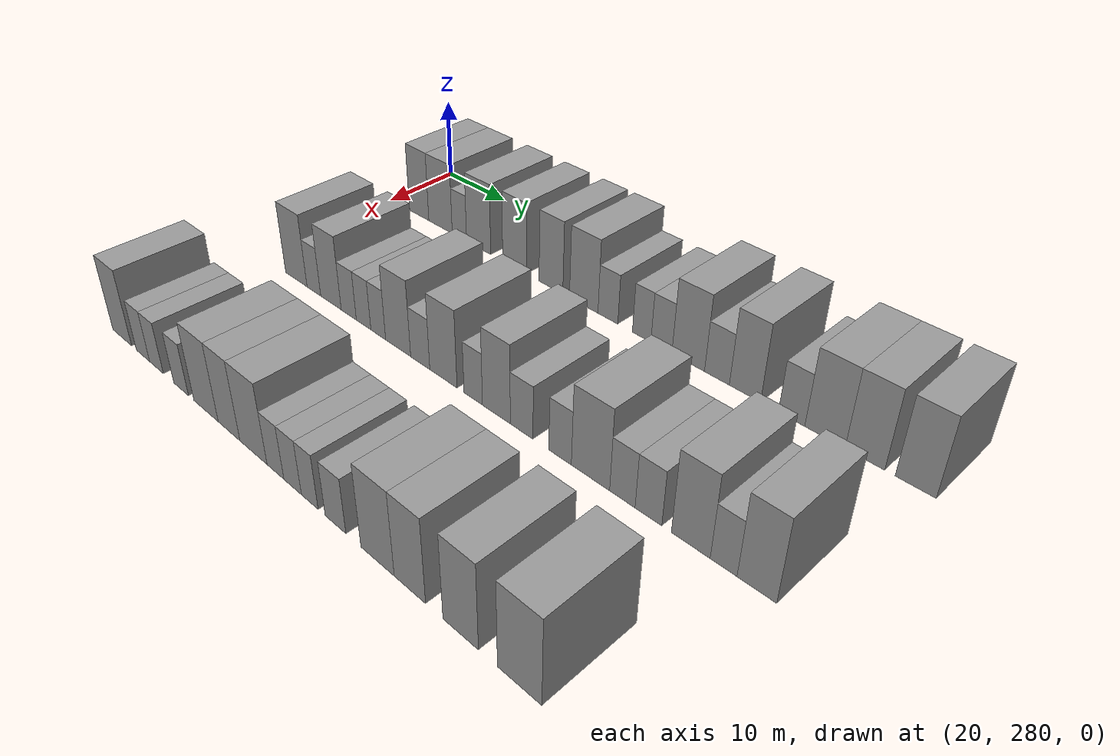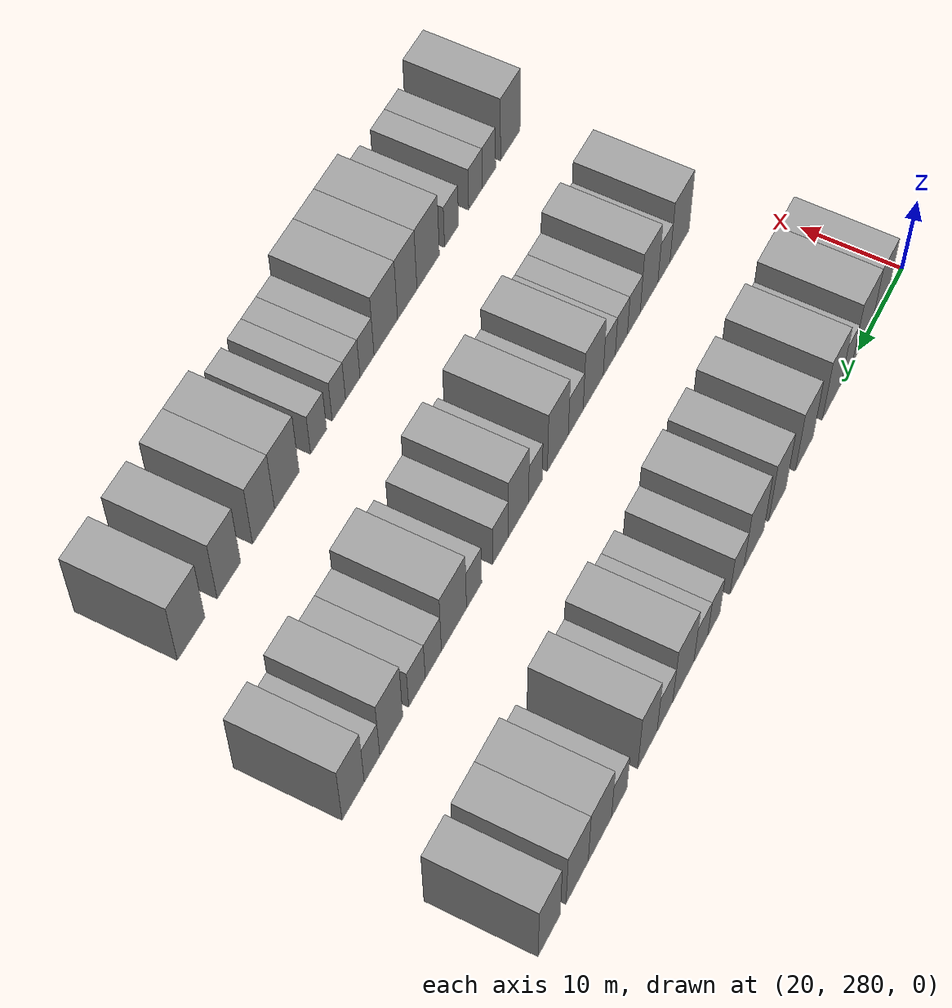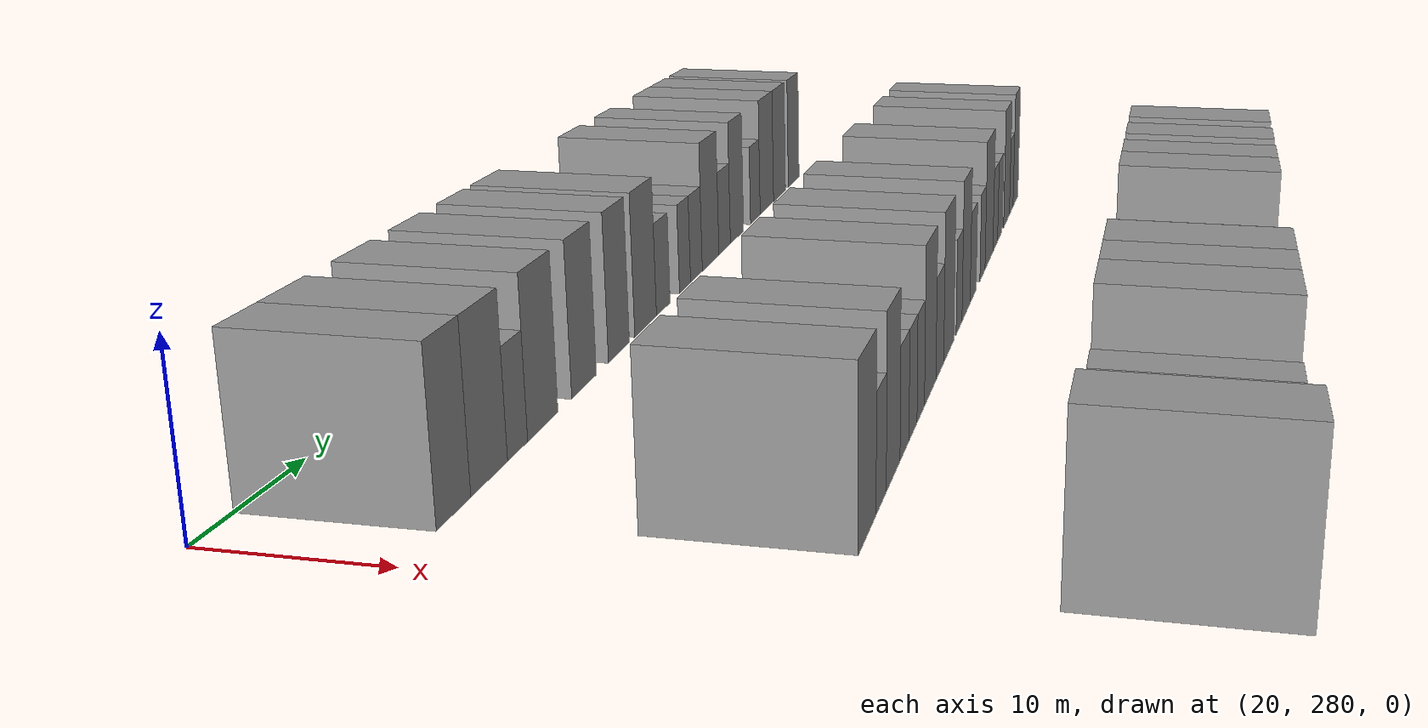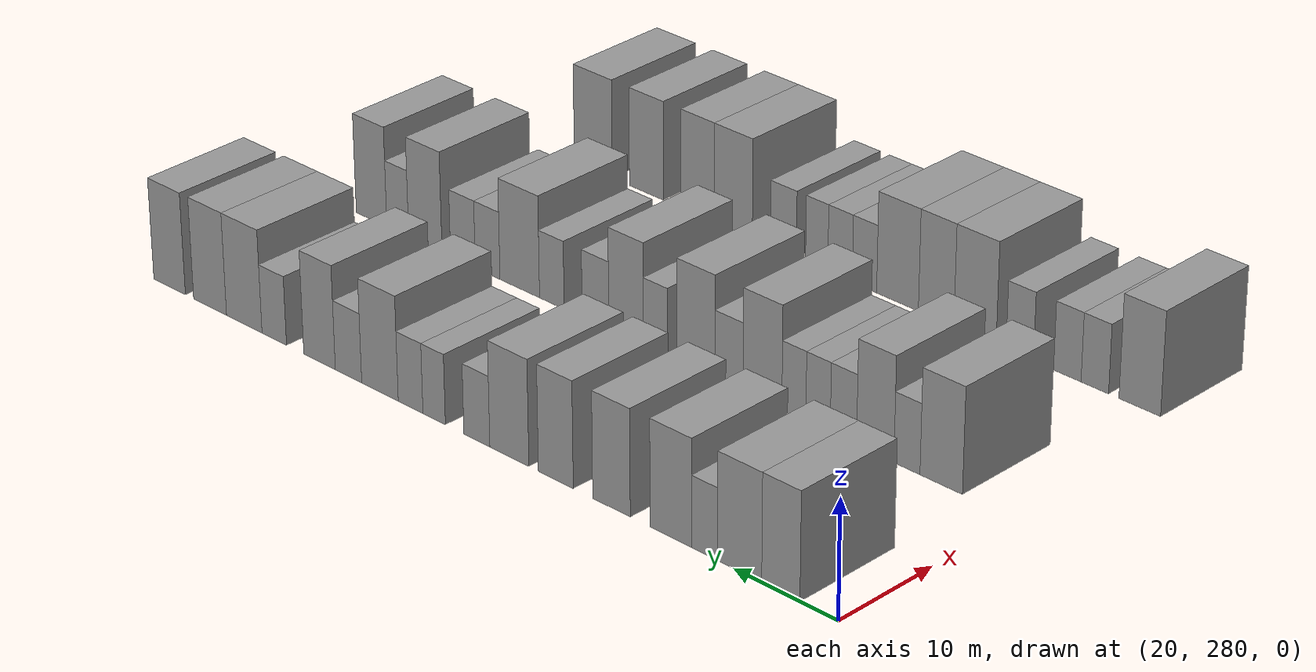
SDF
<sdf version="1.6">
 <world name="default">
  <model name="building_154">
   <static>1</static>
   <pose>25.0000 285.4365 0 0.000000 0.000000 0.000000</pose>
   <link name="link">
    <pose>0 0 4.50 0 0 0</pose>
    <collision name="collision"><geometry><box><size>10.0000 3.6481 9.0000</size></box></geometry></collision>
    <visual name="visual">
     <cast_shadows>0</cast_shadows>
     <geometry><box><size>10.0000 3.6481 9.0000</size></box></geometry>
     <material>
      <script>
       <uri>model://grey_wall/materials/scripts</uri>
       <uri>model://grey_wall/materials/textures</uri>
       <name>vrc/grey_wall</name>
      </script>
     </material>
    </visual>
   </link>
  </model>
  <model name="building_155">
   <static>1</static>
   <pose>25.0000 289.3986 0 0.000000 0.000000 0.000000</pose>
   <link name="link">
    <pose>0 0 4.50 0 0 0</pose>
    <collision name="collision"><geometry><box><size>10.0000 4.2760 9.0000</size></box></geometry></collision>
    <visual name="visual">
     <cast_shadows>0</cast_shadows>
     <geometry><box><size>10.0000 4.2760 9.0000</size></box></geometry>
     <material>
      <script>
       <uri>model://grey_wall/materials/scripts</uri>
       <uri>model://grey_wall/materials/textures</uri>
       <name>vrc/grey_wall</name>
      </script>
     </material>
    </visual>
   </link>
  </model>
  <model name="building_156">
   <static>1</static>
   <pose>25.0000 292.8083 0 0.000000 0.000000 0.000000</pose>
   <link name="link">
    <pose>0 0 3.00 0 0 0</pose>
    <collision name="collision"><geometry><box><size>10.0000 2.5434 6.0000</size></box></geometry></collision>
    <visual name="visual">
     <cast_shadows>0</cast_shadows>
     <geometry><box><size>10.0000 2.5434 6.0000</size></box></geometry>
     <material>
      <script>
       <uri>model://grey_wall/materials/scripts</uri>
       <uri>model://grey_wall/materials/textures</uri>
       <name>vrc/grey_wall</name>
      </script>
     </material>
    </visual>
   </link>
  </model>
  <model name="building_157">
   <static>1</static>
   <pose>25.0000 296.1416 0 0.000000 0.000000 0.000000</pose>
   <link name="link">
    <pose>0 0 4.50 0 0 0</pose>
    <collision name="collision"><geometry><box><size>10.0000 4.1233 9.0000</size></box></geometry></collision>
    <visual name="visual">
     <cast_shadows>0</cast_shadows>
     <geometry><box><size>10.0000 4.1233 9.0000</size></box></geometry>
     <material>
      <script>
       <uri>model://grey_wall/materials/scripts</uri>
       <uri>model://grey_wall/materials/textures</uri>
       <name>vrc/grey_wall</name>
      </script>
     </material>
    </visual>
   </link>
  </model>
  <model name="building_158">
   <static>1</static>
   <pose>25.0000 302.1129 0 0.000000 0.000000 0.000000</pose>
   <link name="link">
    <pose>0 0 4.50 0 0 0</pose>
    <collision name="collision"><geometry><box><size>10.0000 3.8192 9.0000</size></box></geometry></collision>
    <visual name="visual">
     <cast_shadows>0</cast_shadows>
     <geometry><box><size>10.0000 3.8192 9.0000</size></box></geometry>
     <material>
      <script>
       <uri>model://grey_wall/materials/scripts</uri>
       <uri>model://grey_wall/materials/textures</uri>
       <name>vrc/grey_wall</name>
      </script>
     </material>
    </visual>
   </link>
  </model>
  <model name="building_159">
   <static>1</static>
   <pose>25.0000 307.8364 0 0.000000 0.000000 0.000000</pose>
   <link name="link">
    <pose>0 0 4.50 0 0 0</pose>
    <collision name="collision"><geometry><box><size>10.0000 3.6278 9.0000</size></box></geometry></collision>
    <visual name="visual">
     <cast_shadows>0</cast_shadows>
     <geometry><box><size>10.0000 3.6278 9.0000</size></box></geometry>
     <material>
      <script>
       <uri>model://grey_wall/materials/scripts</uri>
       <uri>model://grey_wall/materials/textures</uri>
       <name>vrc/grey_wall</name>
      </script>
     </material>
    </visual>
   </link>
  </model>
  <model name="building_160">
   <static>1</static>
   <pose>25.0000 312.7195 0 0.000000 0.000000 0.000000</pose>
   <link name="link">
    <pose>0 0 4.50 0 0 0</pose>
    <collision name="collision"><geometry><box><size>10.0000 4.1385 9.0000</size></box></geometry></collision>
    <visual name="visual">
     <cast_shadows>0</cast_shadows>
     <geometry><box><size>10.0000 4.1385 9.0000</size></box></geometry>
     <material>
      <script>
       <uri>model://grey_wall/materials/scripts</uri>
       <uri>model://grey_wall/materials/textures</uri>
       <name>vrc/grey_wall</name>
      </script>
     </material>
    </visual>
   </link>
  </model>
  <model name="building_161">
   <static>1</static>
   <pose>25.0000 316.1826 0 0.000000 0.000000 0.000000</pose>
   <link name="link">
    <pose>0 0 3.00 0 0 0</pose>
    <collision name="collision"><geometry><box><size>10.0000 2.7876 6.0000</size></box></geometry></collision>
    <visual name="visual">
     <cast_shadows>0</cast_shadows>
     <geometry><box><size>10.0000 2.7876 6.0000</size></box></geometry>
     <material>
      <script>
       <uri>model://grey_wall/materials/scripts</uri>
       <uri>model://grey_wall/materials/textures</uri>
       <name>vrc/grey_wall</name>
      </script>
     </material>
    </visual>
   </link>
  </model>
  <model name="building_162">
   <static>1</static>
   <pose>25.0000 320.8050 0 0.000000 0.000000 0.000000</pose>
   <link name="link">
    <pose>0 0 3.00 0 0 0</pose>
    <collision name="collision"><geometry><box><size>10.0000 2.4573 6.0000</size></box></geometry></collision>
    <visual name="visual">
     <cast_shadows>0</cast_shadows>
     <geometry><box><size>10.0000 2.4573 6.0000</size></box></geometry>
     <material>
      <script>
       <uri>model://grey_wall/materials/scripts</uri>
       <uri>model://grey_wall/materials/textures</uri>
       <name>vrc/grey_wall</name>
      </script>
     </material>
    </visual>
   </link>
  </model>
  <model name="building_163">
   <static>1</static>
   <pose>25.0000 323.3936 0 0.000000 0.000000 0.000000</pose>
   <link name="link">
    <pose>0 0 3.00 0 0 0</pose>
    <collision name="collision"><geometry><box><size>10.0000 2.7198 6.0000</size></box></geometry></collision>
    <visual name="visual">
     <cast_shadows>0</cast_shadows>
     <geometry><box><size>10.0000 2.7198 6.0000</size></box></geometry>
     <material>
      <script>
       <uri>model://grey_wall/materials/scripts</uri>
       <uri>model://grey_wall/materials/textures</uri>
       <name>vrc/grey_wall</name>
      </script>
     </material>
    </visual>
   </link>
  </model>
  <model name="building_164">
   <static>1</static>
   <pose>25.0000 326.7946 0 0.000000 0.000000 0.000000</pose>
   <link name="link">
    <pose>0 0 4.50 0 0 0</pose>
    <collision name="collision"><geometry><box><size>10.0000 4.0823 9.0000</size></box></geometry></collision>
    <visual name="visual">
     <cast_shadows>0</cast_shadows>
     <geometry><box><size>10.0000 4.0823 9.0000</size></box></geometry>
     <material>
      <script>
       <uri>model://grey_wall/materials/scripts</uri>
       <uri>model://grey_wall/materials/textures</uri>
       <name>vrc/grey_wall</name>
      </script>
     </material>
    </visual>
   </link>
  </model>
  <model name="building_165">
   <static>1</static>
   <pose>25.0000 330.3265 0 0.000000 0.000000 0.000000</pose>
   <link name="link">
    <pose>0 0 3.00 0 0 0</pose>
    <collision name="collision"><geometry><box><size>10.0000 2.9815 6.0000</size></box></geometry></collision>
    <visual name="visual">
     <cast_shadows>0</cast_shadows>
     <geometry><box><size>10.0000 2.9815 6.0000</size></box></geometry>
     <material>
      <script>
       <uri>model://grey_wall/materials/scripts</uri>
       <uri>model://grey_wall/materials/textures</uri>
       <name>vrc/grey_wall</name>
      </script>
     </material>
    </visual>
   </link>
  </model>
  <model name="building_166">
   <static>1</static>
   <pose>25.0000 333.6222 0 0.000000 0.000000 0.000000</pose>
   <link name="link">
    <pose>0 0 4.50 0 0 0</pose>
    <collision name="collision"><geometry><box><size>10.0000 3.6100 9.0000</size></box></geometry></collision>
    <visual name="visual">
     <cast_shadows>0</cast_shadows>
     <geometry><box><size>10.0000 3.6100 9.0000</size></box></geometry>
     <material>
      <script>
       <uri>model://grey_wall/materials/scripts</uri>
       <uri>model://grey_wall/materials/textures</uri>
       <name>vrc/grey_wall</name>
      </script>
     </material>
    </visual>
   </link>
  </model>
  <model name="building_167">
   <static>1</static>
   <pose>25.0000 338.8561 0 0.000000 0.000000 0.000000</pose>
   <link name="link">
    <pose>0 0 3.00 0 0 0</pose>
    <collision name="collision"><geometry><box><size>10.0000 2.8579 6.0000</size></box></geometry></collision>
    <visual name="visual">
     <cast_shadows>0</cast_shadows>
     <geometry><box><size>10.0000 2.8579 6.0000</size></box></geometry>
     <material>
      <script>
       <uri>model://grey_wall/materials/scripts</uri>
       <uri>model://grey_wall/materials/textures</uri>
       <name>vrc/grey_wall</name>
      </script>
     </material>
    </visual>
   </link>
  </model>
  <model name="building_168">
   <static>1</static>
   <pose>25.0000 342.3810 0 0.000000 0.000000 0.000000</pose>
   <link name="link">
    <pose>0 0 4.50 0 0 0</pose>
    <collision name="collision"><geometry><box><size>10.0000 4.1919 9.0000</size></box></geometry></collision>
    <visual name="visual">
     <cast_shadows>0</cast_shadows>
     <geometry><box><size>10.0000 4.1919 9.0000</size></box></geometry>
     <material>
      <script>
       <uri>model://grey_wall/materials/scripts</uri>
       <uri>model://grey_wall/materials/textures</uri>
       <name>vrc/grey_wall</name>
      </script>
     </material>
    </visual>
   </link>
  </model>
  <model name="building_169">
   <static>1</static>
   <pose>25.0000 346.4459 0 0.000000 0.000000 0.000000</pose>
   <link name="link">
    <pose>0 0 4.50 0 0 0</pose>
    <collision name="collision"><geometry><box><size>10.0000 3.9378 9.0000</size></box></geometry></collision>
    <visual name="visual">
     <cast_shadows>0</cast_shadows>
     <geometry><box><size>10.0000 3.9378 9.0000</size></box></geometry>
     <material>
      <script>
       <uri>model://grey_wall/materials/scripts</uri>
       <uri>model://grey_wall/materials/textures</uri>
       <name>vrc/grey_wall</name>
      </script>
     </material>
    </visual>
   </link>
  </model>
  <model name="building_170">
   <static>1</static>
   <pose>25.0000 351.3313 0 0.000000 0.000000 0.000000</pose>
   <link name="link">
    <pose>0 0 4.50 0 0 0</pose>
    <collision name="collision"><geometry><box><size>10.0000 3.8329 9.0000</size></box></geometry></collision>
    <visual name="visual">
     <cast_shadows>0</cast_shadows>
     <geometry><box><size>10.0000 3.8329 9.0000</size></box></geometry>
     <material>
      <script>
       <uri>model://grey_wall/materials/scripts</uri>
       <uri>model://grey_wall/materials/textures</uri>
       <name>vrc/grey_wall</name>
      </script>
     </material>
    </visual>
   </link>
  </model>
  <model name="building_324">
   <static>1</static>
   <pose>44.0000 287.0128 0 0.000000 0.000000 0.000000</pose>
   <link name="link">
    <pose>0 0 4.50 0 0 0</pose>
    <collision name="collision"><geometry><box><size>10.0000 4.1016 9.0000</size></box></geometry></collision>
    <visual name="visual">
     <cast_shadows>0</cast_shadows>
     <geometry><box><size>10.0000 4.1016 9.0000</size></box></geometry>
     <material>
      <script>
       <uri>model://grey_wall/materials/scripts</uri>
       <uri>model://grey_wall/materials/textures</uri>
       <name>vrc/grey_wall</name>
      </script>
     </material>
    </visual>
   </link>
  </model>
  <model name="building_325">
   <static>1</static>
   <pose>44.0000 290.3367 0 0.000000 0.000000 0.000000</pose>
   <link name="link">
    <pose>0 0 3.00 0 0 0</pose>
    <collision name="collision"><geometry><box><size>10.0000 2.5463 6.0000</size></box></geometry></collision>
    <visual name="visual">
     <cast_shadows>0</cast_shadows>
     <geometry><box><size>10.0000 2.5463 6.0000</size></box></geometry>
     <material>
      <script>
       <uri>model://grey_wall/materials/scripts</uri>
       <uri>model://grey_wall/materials/textures</uri>
       <name>vrc/grey_wall</name>
      </script>
     </material>
    </visual>
   </link>
  </model>
  <model name="building_326">
   <static>1</static>
   <pose>44.0000 293.4588 0 0.000000 0.000000 0.000000</pose>
   <link name="link">
    <pose>0 0 4.50 0 0 0</pose>
    <collision name="collision"><geometry><box><size>10.0000 3.6979 9.0000</size></box></geometry></collision>
    <visual name="visual">
     <cast_shadows>0</cast_shadows>
     <geometry><box><size>10.0000 3.6979 9.0000</size></box></geometry>
     <material>
      <script>
       <uri>model://grey_wall/materials/scripts</uri>
       <uri>model://grey_wall/materials/textures</uri>
       <name>vrc/grey_wall</name>
      </script>
     </material>
    </visual>
   </link>
  </model>
  <model name="building_327">
   <static>1</static>
   <pose>44.0000 296.6218 0 0.000000 0.000000 0.000000</pose>
   <link name="link">
    <pose>0 0 3.00 0 0 0</pose>
    <collision name="collision"><geometry><box><size>10.0000 2.6282 6.0000</size></box></geometry></collision>
    <visual name="visual">
     <cast_shadows>0</cast_shadows>
     <geometry><box><size>10.0000 2.6282 6.0000</size></box></geometry>
     <material>
      <script>
       <uri>model://grey_wall/materials/scripts</uri>
       <uri>model://grey_wall/materials/textures</uri>
       <name>vrc/grey_wall</name>
      </script>
     </material>
    </visual>
   </link>
  </model>
  <model name="building_328">
   <static>1</static>
   <pose>44.0000 299.1699 0 0.000000 0.000000 0.000000</pose>
   <link name="link">
    <pose>0 0 3.00 0 0 0</pose>
    <collision name="collision"><geometry><box><size>10.0000 2.4679 6.0000</size></box></geometry></collision>
    <visual name="visual">
     <cast_shadows>0</cast_shadows>
     <geometry><box><size>10.0000 2.4679 6.0000</size></box></geometry>
     <material>
      <script>
       <uri>model://grey_wall/materials/scripts</uri>
       <uri>model://grey_wall/materials/textures</uri>
       <name>vrc/grey_wall</name>
      </script>
     </material>
    </visual>
   </link>
  </model>
  <model name="building_329">
   <static>1</static>
   <pose>44.0000 301.6260 0 0.000000 0.000000 0.000000</pose>
   <link name="link">
    <pose>0 0 3.00 0 0 0</pose>
    <collision name="collision"><geometry><box><size>10.0000 2.4445 6.0000</size></box></geometry></collision>
    <visual name="visual">
     <cast_shadows>0</cast_shadows>
     <geometry><box><size>10.0000 2.4445 6.0000</size></box></geometry>
     <material>
      <script>
       <uri>model://grey_wall/materials/scripts</uri>
       <uri>model://grey_wall/materials/textures</uri>
       <name>vrc/grey_wall</name>
      </script>
     </material>
    </visual>
   </link>
  </model>
  <model name="building_330">
   <static>1</static>
   <pose>44.0000 304.8469 0 0.000000 0.000000 0.000000</pose>
   <link name="link">
    <pose>0 0 4.50 0 0 0</pose>
    <collision name="collision"><geometry><box><size>10.0000 3.9973 9.0000</size></box></geometry></collision>
    <visual name="visual">
     <cast_shadows>0</cast_shadows>
     <geometry><box><size>10.0000 3.9973 9.0000</size></box></geometry>
     <material>
      <script>
       <uri>model://grey_wall/materials/scripts</uri>
       <uri>model://grey_wall/materials/textures</uri>
       <name>vrc/grey_wall</name>
      </script>
     </material>
    </visual>
   </link>
  </model>
  <model name="building_331">
   <static>1</static>
   <pose>44.0000 308.3106 0 0.000000 0.000000 0.000000</pose>
   <link name="link">
    <pose>0 0 3.00 0 0 0</pose>
    <collision name="collision"><geometry><box><size>10.0000 2.9301 6.0000</size></box></geometry></collision>
    <visual name="visual">
     <cast_shadows>0</cast_shadows>
     <geometry><box><size>10.0000 2.9301 6.0000</size></box></geometry>
     <material>
      <script>
       <uri>model://grey_wall/materials/scripts</uri>
       <uri>model://grey_wall/materials/textures</uri>
       <name>vrc/grey_wall</name>
      </script>
     </material>
    </visual>
   </link>
  </model>
  <model name="building_332">
   <static>1</static>
   <pose>44.0000 311.7897 0 0.000000 0.000000 0.000000</pose>
   <link name="link">
    <pose>0 0 4.50 0 0 0</pose>
    <collision name="collision"><geometry><box><size>10.0000 4.0280 9.0000</size></box></geometry></collision>
    <visual name="visual">
     <cast_shadows>0</cast_shadows>
     <geometry><box><size>10.0000 4.0280 9.0000</size></box></geometry>
     <material>
      <script>
       <uri>model://grey_wall/materials/scripts</uri>
       <uri>model://grey_wall/materials/textures</uri>
       <name>vrc/grey_wall</name>
      </script>
     </material>
    </visual>
   </link>
  </model>
  <model name="building_333">
   <static>1</static>
   <pose>44.0000 316.0957 0 0.000000 0.000000 0.000000</pose>
   <link name="link">
    <pose>0 0 3.00 0 0 0</pose>
    <collision name="collision"><geometry><box><size>10.0000 2.5841 6.0000</size></box></geometry></collision>
    <visual name="visual">
     <cast_shadows>0</cast_shadows>
     <geometry><box><size>10.0000 2.5841 6.0000</size></box></geometry>
     <material>
      <script>
       <uri>model://grey_wall/materials/scripts</uri>
       <uri>model://grey_wall/materials/textures</uri>
       <name>vrc/grey_wall</name>
      </script>
     </material>
    </visual>
   </link>
  </model>
  <model name="building_334">
   <static>1</static>
   <pose>44.0000 319.2707 0 0.000000 0.000000 0.000000</pose>
   <link name="link">
    <pose>0 0 4.50 0 0 0</pose>
    <collision name="collision"><geometry><box><size>10.0000 3.7658 9.0000</size></box></geometry></collision>
    <visual name="visual">
     <cast_shadows>0</cast_shadows>
     <geometry><box><size>10.0000 3.7658 9.0000</size></box></geometry>
     <material>
      <script>
       <uri>model://grey_wall/materials/scripts</uri>
       <uri>model://grey_wall/materials/textures</uri>
       <name>vrc/grey_wall</name>
      </script>
     </material>
    </visual>
   </link>
  </model>
  <model name="building_335">
   <static>1</static>
   <pose>44.0000 322.6219 0 0.000000 0.000000 0.000000</pose>
   <link name="link">
    <pose>0 0 3.00 0 0 0</pose>
    <collision name="collision"><geometry><box><size>10.0000 2.9367 6.0000</size></box></geometry></collision>
    <visual name="visual">
     <cast_shadows>0</cast_shadows>
     <geometry><box><size>10.0000 2.9367 6.0000</size></box></geometry>
     <material>
      <script>
       <uri>model://grey_wall/materials/scripts</uri>
       <uri>model://grey_wall/materials/textures</uri>
       <name>vrc/grey_wall</name>
      </script>
     </material>
    </visual>
   </link>
  </model>
  <model name="building_336">
   <static>1</static>
   <pose>44.0000 327.4677 0 0.000000 0.000000 0.000000</pose>
   <link name="link">
    <pose>0 0 3.00 0 0 0</pose>
    <collision name="collision"><geometry><box><size>10.0000 2.7549 6.0000</size></box></geometry></collision>
    <visual name="visual">
     <cast_shadows>0</cast_shadows>
     <geometry><box><size>10.0000 2.7549 6.0000</size></box></geometry>
     <material>
      <script>
       <uri>model://grey_wall/materials/scripts</uri>
       <uri>model://grey_wall/materials/textures</uri>
       <name>vrc/grey_wall</name>
      </script>
     </material>
    </visual>
   </link>
  </model>
  <model name="building_337">
   <static>1</static>
   <pose>44.0000 331.0854 0 0.000000 0.000000 0.000000</pose>
   <link name="link">
    <pose>0 0 4.50 0 0 0</pose>
    <collision name="collision"><geometry><box><size>10.0000 4.4804 9.0000</size></box></geometry></collision>
    <visual name="visual">
     <cast_shadows>0</cast_shadows>
     <geometry><box><size>10.0000 4.4804 9.0000</size></box></geometry>
     <material>
      <script>
       <uri>model://grey_wall/materials/scripts</uri>
       <uri>model://grey_wall/materials/textures</uri>
       <name>vrc/grey_wall</name>
      </script>
     </material>
    </visual>
   </link>
  </model>
  <model name="building_338">
   <static>1</static>
   <pose>44.0000 334.7438 0 0.000000 0.000000 0.000000</pose>
   <link name="link">
    <pose>0 0 3.00 0 0 0</pose>
    <collision name="collision"><geometry><box><size>10.0000 2.8365 6.0000</size></box></geometry></collision>
    <visual name="visual">
     <cast_shadows>0</cast_shadows>
     <geometry><box><size>10.0000 2.8365 6.0000</size></box></geometry>
     <material>
      <script>
       <uri>model://grey_wall/materials/scripts</uri>
       <uri>model://grey_wall/materials/textures</uri>
       <name>vrc/grey_wall</name>
      </script>
     </material>
    </visual>
   </link>
  </model>
  <model name="building_339">
   <static>1</static>
   <pose>44.0000 337.5961 0 0.000000 0.000000 0.000000</pose>
   <link name="link">
    <pose>0 0 3.00 0 0 0</pose>
    <collision name="collision"><geometry><box><size>10.0000 2.8681 6.0000</size></box></geometry></collision>
    <visual name="visual">
     <cast_shadows>0</cast_shadows>
     <geometry><box><size>10.0000 2.8681 6.0000</size></box></geometry>
     <material>
      <script>
       <uri>model://grey_wall/materials/scripts</uri>
       <uri>model://grey_wall/materials/textures</uri>
       <name>vrc/grey_wall</name>
      </script>
     </material>
    </visual>
   </link>
  </model>
  <model name="building_340">
   <static>1</static>
   <pose>44.0000 341.9923 0 0.000000 0.000000 0.000000</pose>
   <link name="link">
    <pose>0 0 4.50 0 0 0</pose>
    <collision name="collision"><geometry><box><size>10.0000 3.9243 9.0000</size></box></geometry></collision>
    <visual name="visual">
     <cast_shadows>0</cast_shadows>
     <geometry><box><size>10.0000 3.9243 9.0000</size></box></geometry>
     <material>
      <script>
       <uri>model://grey_wall/materials/scripts</uri>
       <uri>model://grey_wall/materials/textures</uri>
       <name>vrc/grey_wall</name>
      </script>
     </material>
    </visual>
   </link>
  </model>
  <model name="building_341">
   <static>1</static>
   <pose>44.0000 345.2522 0 0.000000 0.000000 0.000000</pose>
   <link name="link">
    <pose>0 0 3.00 0 0 0</pose>
    <collision name="collision"><geometry><box><size>10.0000 2.5956 6.0000</size></box></geometry></collision>
    <visual name="visual">
     <cast_shadows>0</cast_shadows>
     <geometry><box><size>10.0000 2.5956 6.0000</size></box></geometry>
     <material>
      <script>
       <uri>model://grey_wall/materials/scripts</uri>
       <uri>model://grey_wall/materials/textures</uri>
       <name>vrc/grey_wall</name>
      </script>
     </material>
    </visual>
   </link>
  </model>
  <model name="building_342">
   <static>1</static>
   <pose>44.0000 348.3865 0 0.000000 0.000000 0.000000</pose>
   <link name="link">
    <pose>0 0 4.50 0 0 0</pose>
    <collision name="collision"><geometry><box><size>10.0000 3.6729 9.0000</size></box></geometry></collision>
    <visual name="visual">
     <cast_shadows>0</cast_shadows>
     <geometry><box><size>10.0000 3.6729 9.0000</size></box></geometry>
     <material>
      <script>
       <uri>model://grey_wall/materials/scripts</uri>
       <uri>model://grey_wall/materials/textures</uri>
       <name>vrc/grey_wall</name>
      </script>
     </material>
    </visual>
   </link>
  </model>
  <model name="building_505">
   <static>1</static>
   <pose>63.0000 283.6733 0 0.000000 0.000000 0.000000</pose>
   <link name="link">
    <pose>0 0 4.50 0 0 0</pose>
    <collision name="collision"><geometry><box><size>10.0000 4.0003 9.0000</size></box></geometry></collision>
    <visual name="visual">
     <cast_shadows>0</cast_shadows>
     <geometry><box><size>10.0000 4.0003 9.0000</size></box></geometry>
     <material>
      <script>
       <uri>model://grey_wall/materials/scripts</uri>
       <uri>model://grey_wall/materials/textures</uri>
       <name>vrc/grey_wall</name>
      </script>
     </material>
    </visual>
   </link>
  </model>
  <model name="building_506">
   <static>1</static>
   <pose>63.0000 288.0195 0 0.000000 0.000000 0.000000</pose>
   <link name="link">
    <pose>0 0 3.00 0 0 0</pose>
    <collision name="collision"><geometry><box><size>10.0000 2.6921 6.0000</size></box></geometry></collision>
    <visual name="visual">
     <cast_shadows>0</cast_shadows>
     <geometry><box><size>10.0000 2.6921 6.0000</size></box></geometry>
     <material>
      <script>
       <uri>model://grey_wall/materials/scripts</uri>
       <uri>model://grey_wall/materials/textures</uri>
       <name>vrc/grey_wall</name>
      </script>
     </material>
    </visual>
   </link>
  </model>
  <model name="building_507">
   <static>1</static>
   <pose>63.0000 290.7170 0 0.000000 0.000000 0.000000</pose>
   <link name="link">
    <pose>0 0 3.00 0 0 0</pose>
    <collision name="collision"><geometry><box><size>10.0000 2.7030 6.0000</size></box></geometry></collision>
    <visual name="visual">
     <cast_shadows>0</cast_shadows>
     <geometry><box><size>10.0000 2.7030 6.0000</size></box></geometry>
     <material>
      <script>
       <uri>model://grey_wall/materials/scripts</uri>
       <uri>model://grey_wall/materials/textures</uri>
       <name>vrc/grey_wall</name>
      </script>
     </material>
    </visual>
   </link>
  </model>
  <model name="building_508">
   <static>1</static>
   <pose>63.0000 295.4434 0 0.000000 0.000000 0.000000</pose>
   <link name="link">
    <pose>0 0 3.00 0 0 0</pose>
    <collision name="collision"><geometry><box><size>10.0000 2.7498 6.0000</size></box></geometry></collision>
    <visual name="visual">
     <cast_shadows>0</cast_shadows>
     <geometry><box><size>10.0000 2.7498 6.0000</size></box></geometry>
     <material>
      <script>
       <uri>model://grey_wall/materials/scripts</uri>
       <uri>model://grey_wall/materials/textures</uri>
       <name>vrc/grey_wall</name>
      </script>
     </material>
    </visual>
   </link>
  </model>
  <model name="building_509">
   <static>1</static>
   <pose>63.0000 299.9736 0 0.000000 0.000000 0.000000</pose>
   <link name="link">
    <pose>0 0 4.50 0 0 0</pose>
    <collision name="collision"><geometry><box><size>10.0000 4.3106 9.0000</size></box></geometry></collision>
    <visual name="visual">
     <cast_shadows>0</cast_shadows>
     <geometry><box><size>10.0000 4.3106 9.0000</size></box></geometry>
     <material>
      <script>
       <uri>model://grey_wall/materials/scripts</uri>
       <uri>model://grey_wall/materials/textures</uri>
       <name>vrc/grey_wall</name>
      </script>
     </material>
    </visual>
   </link>
  </model>
  <model name="building_510">
   <static>1</static>
   <pose>63.0000 303.9609 0 0.000000 0.000000 0.000000</pose>
   <link name="link">
    <pose>0 0 4.50 0 0 0</pose>
    <collision name="collision"><geometry><box><size>10.0000 3.6640 9.0000</size></box></geometry></collision>
    <visual name="visual">
     <cast_shadows>0</cast_shadows>
     <geometry><box><size>10.0000 3.6640 9.0000</size></box></geometry>
     <material>
      <script>
       <uri>model://grey_wall/materials/scripts</uri>
       <uri>model://grey_wall/materials/textures</uri>
       <name>vrc/grey_wall</name>
      </script>
     </material>
    </visual>
   </link>
  </model>
  <model name="building_511">
   <static>1</static>
   <pose>63.0000 307.9824 0 0.000000 0.000000 0.000000</pose>
   <link name="link">
    <pose>0 0 4.50 0 0 0</pose>
    <collision name="collision"><geometry><box><size>10.0000 4.3789 9.0000</size></box></geometry></collision>
    <visual name="visual">
     <cast_shadows>0</cast_shadows>
     <geometry><box><size>10.0000 4.3789 9.0000</size></box></geometry>
     <material>
      <script>
       <uri>model://grey_wall/materials/scripts</uri>
       <uri>model://grey_wall/materials/textures</uri>
       <name>vrc/grey_wall</name>
      </script>
     </material>
    </visual>
   </link>
  </model>
  <model name="building_512">
   <static>1</static>
   <pose>63.0000 311.4646 0 0.000000 0.000000 0.000000</pose>
   <link name="link">
    <pose>0 0 3.00 0 0 0</pose>
    <collision name="collision"><geometry><box><size>10.0000 2.5856 6.0000</size></box></geometry></collision>
    <visual name="visual">
     <cast_shadows>0</cast_shadows>
     <geometry><box><size>10.0000 2.5856 6.0000</size></box></geometry>
     <material>
      <script>
       <uri>model://grey_wall/materials/scripts</uri>
       <uri>model://grey_wall/materials/textures</uri>
       <name>vrc/grey_wall</name>
      </script>
     </material>
    </visual>
   </link>
  </model>
  <model name="building_513">
   <static>1</static>
   <pose>63.0000 314.0671 0 0.000000 0.000000 0.000000</pose>
   <link name="link">
    <pose>0 0 3.00 0 0 0</pose>
    <collision name="collision"><geometry><box><size>10.0000 2.6192 6.0000</size></box></geometry></collision>
    <visual name="visual">
     <cast_shadows>0</cast_shadows>
     <geometry><box><size>10.0000 2.6192 6.0000</size></box></geometry>
     <material>
      <script>
       <uri>model://grey_wall/materials/scripts</uri>
       <uri>model://grey_wall/materials/textures</uri>
       <name>vrc/grey_wall</name>
      </script>
     </material>
    </visual>
   </link>
  </model>
  <model name="building_514">
   <static>1</static>
   <pose>63.0000 316.5784 0 0.000000 0.000000 0.000000</pose>
   <link name="link">
    <pose>0 0 3.00 0 0 0</pose>
    <collision name="collision"><geometry><box><size>10.0000 2.4034 6.0000</size></box></geometry></collision>
    <visual name="visual">
     <cast_shadows>0</cast_shadows>
     <geometry><box><size>10.0000 2.4034 6.0000</size></box></geometry>
     <material>
      <script>
       <uri>model://grey_wall/materials/scripts</uri>
       <uri>model://grey_wall/materials/textures</uri>
       <name>vrc/grey_wall</name>
      </script>
     </material>
    </visual>
   </link>
  </model>
  <model name="building_515">
   <static>1</static>
   <pose>63.0000 320.1967 0 0.000000 0.000000 0.000000</pose>
   <link name="link">
    <pose>0 0 3.00 0 0 0</pose>
    <collision name="collision"><geometry><box><size>10.0000 2.8332 6.0000</size></box></geometry></collision>
    <visual name="visual">
     <cast_shadows>0</cast_shadows>
     <geometry><box><size>10.0000 2.8332 6.0000</size></box></geometry>
     <material>
      <script>
       <uri>model://grey_wall/materials/scripts</uri>
       <uri>model://grey_wall/materials/textures</uri>
       <name>vrc/grey_wall</name>
      </script>
     </material>
    </visual>
   </link>
  </model>
  <model name="building_516">
   <static>1</static>
   <pose>63.0000 325.7327 0 0.000000 0.000000 0.000000</pose>
   <link name="link">
    <pose>0 0 4.50 0 0 0</pose>
    <collision name="collision"><geometry><box><size>10.0000 4.2389 9.0000</size></box></geometry></collision>
    <visual name="visual">
     <cast_shadows>0</cast_shadows>
     <geometry><box><size>10.0000 4.2389 9.0000</size></box></geometry>
     <material>
      <script>
       <uri>model://grey_wall/materials/scripts</uri>
       <uri>model://grey_wall/materials/textures</uri>
       <name>vrc/grey_wall</name>
      </script>
     </material>
    </visual>
   </link>
  </model>
  <model name="building_517">
   <static>1</static>
   <pose>63.0000 329.7349 0 0.000000 0.000000 0.000000</pose>
   <link name="link">
    <pose>0 0 4.50 0 0 0</pose>
    <collision name="collision"><geometry><box><size>10.0000 3.7653 9.0000</size></box></geometry></collision>
    <visual name="visual">
     <cast_shadows>0</cast_shadows>
     <geometry><box><size>10.0000 3.7653 9.0000</size></box></geometry>
     <material>
      <script>
       <uri>model://grey_wall/materials/scripts</uri>
       <uri>model://grey_wall/materials/textures</uri>
       <name>vrc/grey_wall</name>
      </script>
     </material>
    </visual>
   </link>
  </model>
  <model name="building_518">
   <static>1</static>
   <pose>63.0000 335.5741 0 0.000000 0.000000 0.000000</pose>
   <link name="link">
    <pose>0 0 4.50 0 0 0</pose>
    <collision name="collision"><geometry><box><size>10.0000 3.9132 9.0000</size></box></geometry></collision>
    <visual name="visual">
     <cast_shadows>0</cast_shadows>
     <geometry><box><size>10.0000 3.9132 9.0000</size></box></geometry>
     <material>
      <script>
       <uri>model://grey_wall/materials/scripts</uri>
       <uri>model://grey_wall/materials/textures</uri>
       <name>vrc/grey_wall</name>
      </script>
     </material>
    </visual>
   </link>
  </model>
  <model name="building_519">
   <static>1</static>
   <pose>63.0000 341.7600 0 0.000000 0.000000 0.000000</pose>
   <link name="link">
    <pose>0 0 4.50 0 0 0</pose>
    <collision name="collision"><geometry><box><size>10.0000 4.4586 9.0000</size></box></geometry></collision>
    <visual name="visual">
     <cast_shadows>0</cast_shadows>
     <geometry><box><size>10.0000 4.4586 9.0000</size></box></geometry>
     <material>
      <script>
       <uri>model://grey_wall/materials/scripts</uri>
       <uri>model://grey_wall/materials/textures</uri>
       <name>vrc/grey_wall</name>
      </script>
     </material>
    </visual>
   </link>
  </model>
 </world>
</sdf>
